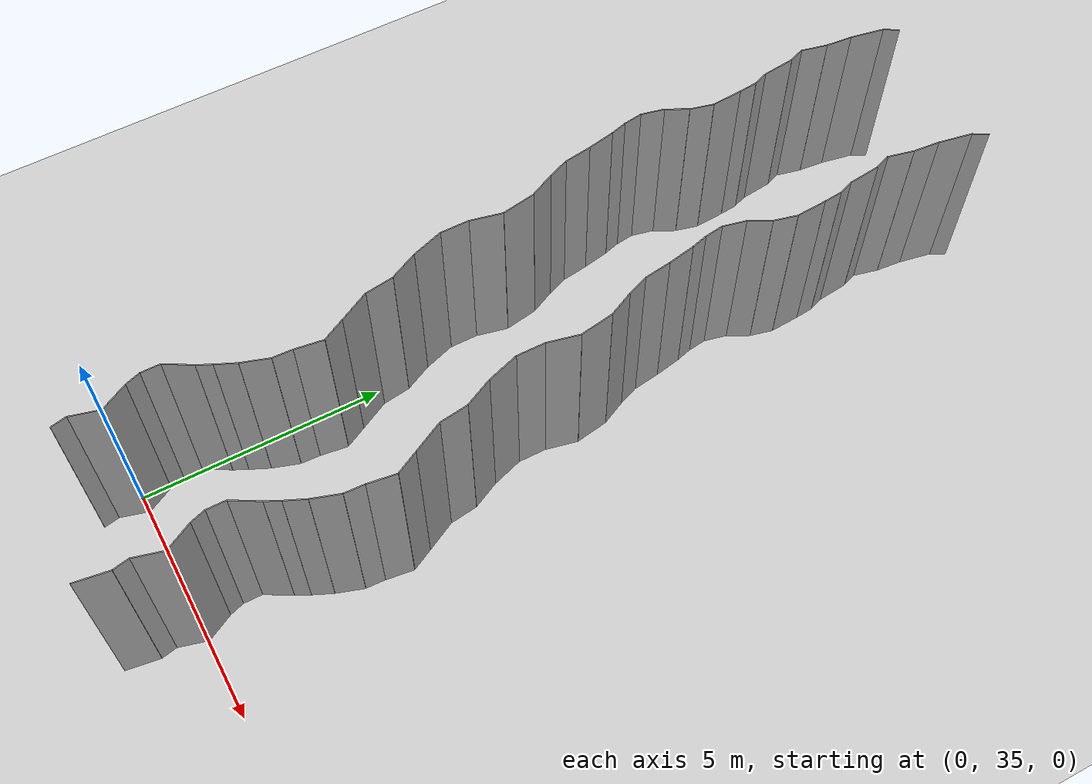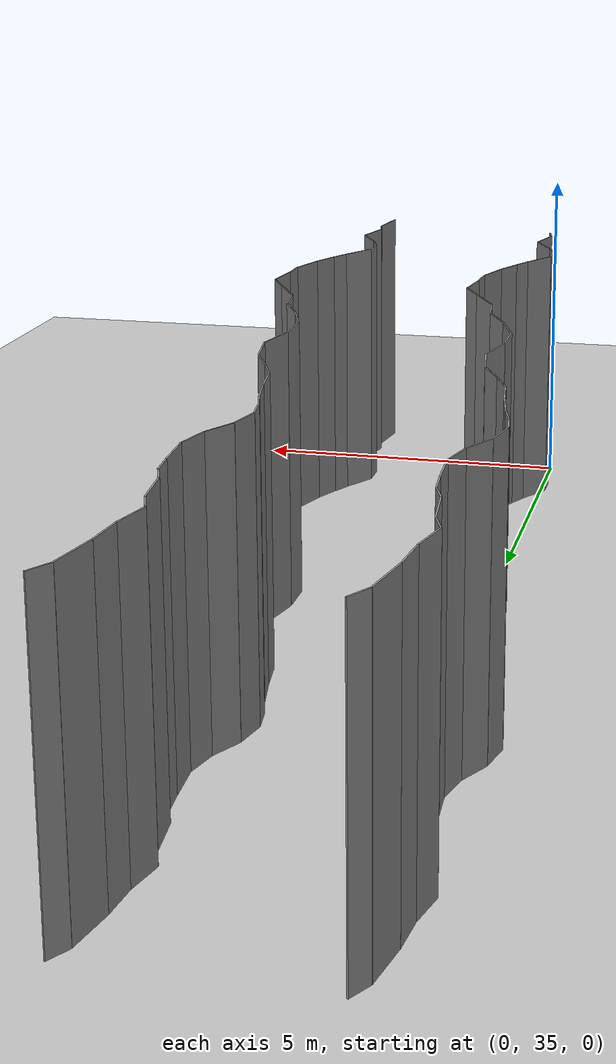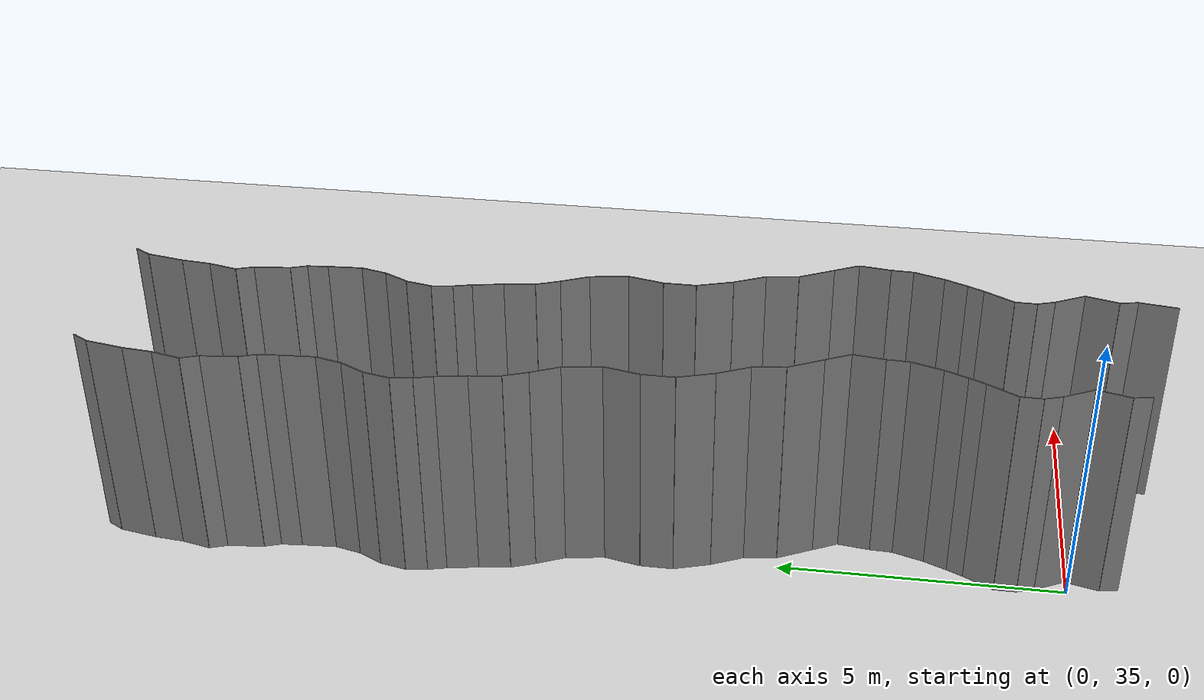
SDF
<sdf version="1.6">
 <world name="default">
  <model name="ground_plane">
   <static>1</static>
   <link name="link">
    <collision name="collision">
     <geometry><plane><normal>0 0 1</normal><size>200 200</size></plane></geometry>
     <surface><friction><ode><mu>100</mu><mu2>50</mu2></ode></friction></surface>
    </collision>
    <visual name="visual">
     <cast_shadows>0</cast_shadows>
     <geometry><plane><normal>0 0 1</normal><size>200 200</size></plane></geometry>
     <material>
      <script><uri>file://media/materials/scripts/gazebo.material</uri><name>Gazebo/Grey</name></script>
     </material>
    </visual>
   </link>
   <pose>0 100 0 0 -0 0</pose>
  </model>
  <model name="wall_149">
   <static>1</static>
   <pose>3.171608143564912 33.77311042109555 2 0 0 -0.14386038586667088</pose>
   <link name="link">
    <collision name="collision"><geometry><box><size>0.02 0.695794862949 4</size></box></geometry></collision>
    <visual name="visual">
     <material>
      <script><name>Gazebo/Grey</name><uri>file://media/materials/scripts/gazebo.material</uri></script>
     </material>
     <geometry><box><size>0.02 0.695794862949 4</size></box></geometry>
    </visual>
   </link>
  </model>
  <model name="wall_150">
   <static>1</static>
   <pose>0.18892350985003298 34.27796828672299 2 0 0 0.20008903438960743</pose>
   <link name="link">
    <collision name="collision"><geometry><box><size>0.02 0.327645368961 4</size></box></geometry></collision>
    <visual name="visual">
     <material>
      <script><name>Gazebo/Grey</name><uri>file://media/materials/scripts/gazebo.material</uri></script>
     </material>
     <geometry><box><size>0.02 0.327645368961 4</size></box></geometry>
    </visual>
   </link>
  </model>
  <model name="wall_151">
   <static>1</static>
   <pose>3.188923509850033 34.27796828672299 2 0 0 0.20008903438960743</pose>
   <link name="link">
    <collision name="collision"><geometry><box><size>0.02 0.327645368961 4</size></box></geometry></collision>
    <visual name="visual">
     <material>
      <script><name>Gazebo/Grey</name><uri>file://media/materials/scripts/gazebo.material</uri></script>
     </material>
     <geometry><box><size>0.02 0.327645368961 4</size></box></geometry>
    </visual>
   </link>
  </model>
  <model name="wall_152">
   <static>1</static>
   <pose>0.23509121913495112 34.73130719748788 2 0 0 -0.2626823083209247</pose>
   <link name="link">
    <collision name="collision"><geometry><box><size>0.02 0.606369682561 4</size></box></geometry></collision>
    <visual name="visual">
     <material>
      <script><name>Gazebo/Grey</name><uri>file://media/materials/scripts/gazebo.material</uri></script>
     </material>
     <geometry><box><size>0.02 0.606369682561 4</size></box></geometry>
    </visual>
   </link>
  </model>
  <model name="wall_153">
   <static>1</static>
   <pose>3.2350912191349512 34.73130719748788 2 0 0 -0.2626823083209247</pose>
   <link name="link">
    <collision name="collision"><geometry><box><size>0.02 0.606369682561 4</size></box></geometry></collision>
    <visual name="visual">
     <material>
      <script><name>Gazebo/Grey</name><uri>file://media/materials/scripts/gazebo.material</uri></script>
     </material>
     <geometry><box><size>0.02 0.606369682561 4</size></box></geometry>
    </visual>
   </link>
  </model>
  <model name="wall_154">
   <static>1</static>
   <pose>0.1718840030193623 35.28975248554513 2 0 0 0.4906899880882893</pose>
   <link name="link">
    <collision name="collision"><geometry><box><size>0.02 0.602399615503 4</size></box></geometry></collision>
    <visual name="visual">
     <material>
      <script><name>Gazebo/Grey</name><uri>file://media/materials/scripts/gazebo.material</uri></script>
     </material>
     <geometry><box><size>0.02 0.602399615503 4</size></box></geometry>
    </visual>
   </link>
  </model>
  <model name="wall_155">
   <static>1</static>
   <pose>3.1718840030193625 35.28975248554513 2 0 0 0.4906899880882893</pose>
   <link name="link">
    <collision name="collision"><geometry><box><size>0.02 0.602399615503 4</size></box></geometry></collision>
    <visual name="visual">
     <material>
      <script><name>Gazebo/Grey</name><uri>file://media/materials/scripts/gazebo.material</uri></script>
     </material>
     <geometry><box><size>0.02 0.602399615503 4</size></box></geometry>
    </visual>
   </link>
  </model>
  <model name="wall_156">
   <static>1</static>
   <pose>-0.020345527843900625 35.70681303335894 2 0 0 0.3207225356970193</pose>
   <link name="link">
    <collision name="collision"><geometry><box><size>0.02 0.319069912063 4</size></box></geometry></collision>
    <visual name="visual">
     <material>
      <script><name>Gazebo/Grey</name><uri>file://media/materials/scripts/gazebo.material</uri></script>
     </material>
     <geometry><box><size>0.02 0.319069912063 4</size></box></geometry>
    </visual>
   </link>
  </model>
  <model name="wall_157">
   <static>1</static>
   <pose>2.9796544721560996 35.70681303335894 2 0 0 0.3207225356970193</pose>
   <link name="link">
    <collision name="collision"><geometry><box><size>0.02 0.319069912063 4</size></box></geometry></collision>
    <visual name="visual">
     <material>
      <script><name>Gazebo/Grey</name><uri>file://media/materials/scripts/gazebo.material</uri></script>
     </material>
     <geometry><box><size>0.02 0.319069912063 4</size></box></geometry>
    </visual>
   </link>
  </model>
  <model name="wall_158">
   <static>1</static>
   <pose>-0.0694467866599844 36.053499369457356 2 0 0 -0.006106383864574724</pose>
   <link name="link">
    <collision name="collision"><geometry><box><size>0.02 0.390580091799 4</size></box></geometry></collision>
    <visual name="visual">
     <material>
      <script><name>Gazebo/Grey</name><uri>file://media/materials/scripts/gazebo.material</uri></script>
     </material>
     <geometry><box><size>0.02 0.390580091799 4</size></box></geometry>
    </visual>
   </link>
  </model>
  <model name="wall_159">
   <static>1</static>
   <pose>2.9305532133400156 36.053499369457356 2 0 0 -0.006106383864574724</pose>
   <link name="link">
    <collision name="collision"><geometry><box><size>0.02 0.390580091799 4</size></box></geometry></collision>
    <visual name="visual">
     <material>
      <script><name>Gazebo/Grey</name><uri>file://media/materials/scripts/gazebo.material</uri></script>
     </material>
     <geometry><box><size>0.02 0.390580091799 4</size></box></geometry>
    </visual>
   </link>
  </model>
  <model name="wall_160">
   <static>1</static>
   <pose>0.08222341834636318 36.51030600289285 2 0 0 -0.5221318421050558</pose>
   <link name="link">
    <collision name="collision"><geometry><box><size>0.02 0.603444668684 4</size></box></geometry></collision>
    <visual name="visual">
     <material>
      <script><name>Gazebo/Grey</name><uri>file://media/materials/scripts/gazebo.material</uri></script>
     </material>
     <geometry><box><size>0.02 0.603444668684 4</size></box></geometry>
    </visual>
   </link>
  </model>
  <model name="wall_161">
   <static>1</static>
   <pose>3.0822234183463633 36.51030600289285 2 0 0 -0.5221318421050558</pose>
   <link name="link">
    <collision name="collision"><geometry><box><size>0.02 0.603444668684 4</size></box></geometry></collision>
    <visual name="visual">
     <material>
      <script><name>Gazebo/Grey</name><uri>file://media/materials/scripts/gazebo.material</uri></script>
     </material>
     <geometry><box><size>0.02 0.603444668684 4</size></box></geometry>
    </visual>
   </link>
  </model>
  <model name="wall_162">
   <static>1</static>
   <pose>0.3028551902676356 36.91294699241623 2 0 0 -0.46134165340490685</pose>
   <link name="link">
    <collision name="collision"><geometry><box><size>0.02 0.315193042424 4</size></box></geometry></collision>
    <visual name="visual">
     <material>
      <script><name>Gazebo/Grey</name><uri>file://media/materials/scripts/gazebo.material</uri></script>
     </material>
     <geometry><box><size>0.02 0.315193042424 4</size></box></geometry>
    </visual>
   </link>
  </model>
  <model name="wall_163">
   <static>1</static>
   <pose>3.3028551902676355 36.91294699241623 2 0 0 -0.46134165340490685</pose>
   <link name="link">
    <collision name="collision"><geometry><box><size>0.02 0.315193042424 4</size></box></geometry></collision>
    <visual name="visual">
     <material>
      <script><name>Gazebo/Grey</name><uri>file://media/materials/scripts/gazebo.material</uri></script>
     </material>
     <geometry><box><size>0.02 0.315193042424 4</size></box></geometry>
    </visual>
   </link>
  </model>
  <model name="wall_164">
   <static>1</static>
   <pose>0.4636855198954317 37.25498901338076 2 0 0 -0.4239365052582931</pose>
   <link name="link">
    <collision name="collision"><geometry><box><size>0.02 0.44086975747 4</size></box></geometry></collision>
    <visual name="visual">
     <material>
      <script><name>Gazebo/Grey</name><uri>file://media/materials/scripts/gazebo.material</uri></script>
     </material>
     <geometry><box><size>0.02 0.44086975747 4</size></box></geometry>
    </visual>
   </link>
  </model>
  <model name="wall_165">
   <static>1</static>
   <pose>3.4636855198954315 37.25498901338076 2 0 0 -0.4239365052582931</pose>
   <link name="link">
    <collision name="collision"><geometry><box><size>0.02 0.44086975747 4</size></box></geometry></collision>
    <visual name="visual">
     <material>
      <script><name>Gazebo/Grey</name><uri>file://media/materials/scripts/gazebo.material</uri></script>
     </material>
     <geometry><box><size>0.02 0.44086975747 4</size></box></geometry>
    </visual>
   </link>
  </model>
  <model name="wall_166">
   <static>1</static>
   <pose>0.6454690939652444 37.73129103879797 2 0 0 -0.31950601574117365</pose>
   <link name="link">
    <collision name="collision"><geometry><box><size>0.02 0.580121055424 4</size></box></geometry></collision>
    <visual name="visual">
     <material>
      <script><name>Gazebo/Grey</name><uri>file://media/materials/scripts/gazebo.material</uri></script>
     </material>
     <geometry><box><size>0.02 0.580121055424 4</size></box></geometry>
    </visual>
   </link>
  </model>
  <model name="wall_167">
   <static>1</static>
   <pose>3.6454690939652443 37.73129103879797 2 0 0 -0.31950601574117365</pose>
   <link name="link">
    <collision name="collision"><geometry><box><size>0.02 0.580121055424 4</size></box></geometry></collision>
    <visual name="visual">
     <material>
      <script><name>Gazebo/Grey</name><uri>file://media/materials/scripts/gazebo.material</uri></script>
     </material>
     <geometry><box><size>0.02 0.580121055424 4</size></box></geometry>
    </visual>
   </link>
  </model>
  <model name="wall_168">
   <static>1</static>
   <pose>0.7454639634578197 38.207496566971045 2 0 0 -0.0442263896261448</pose>
   <link name="link">
    <collision name="collision"><geometry><box><size>0.02 0.402042653715 4</size></box></geometry></collision>
    <visual name="visual">
     <material>
      <script><name>Gazebo/Grey</name><uri>file://media/materials/scripts/gazebo.material</uri></script>
     </material>
     <geometry><box><size>0.02 0.402042653715 4</size></box></geometry>
    </visual>
   </link>
  </model>
  <model name="wall_169">
   <static>1</static>
   <pose>3.7454639634578197 38.207496566971045 2 0 0 -0.0442263896261448</pose>
   <link name="link">
    <collision name="collision"><geometry><box><size>0.02 0.402042653715 4</size></box></geometry></collision>
    <visual name="visual">
     <material>
      <script><name>Gazebo/Grey</name><uri>file://media/materials/scripts/gazebo.material</uri></script>
     </material>
     <geometry><box><size>0.02 0.402042653715 4</size></box></geometry>
    </visual>
   </link>
  </model>
  <model name="wall_170">
   <static>1</static>
   <pose>0.7938664677204483 38.694957160616724 2 0 0 -0.13699420246442098</pose>
   <link name="link">
    <collision name="collision"><geometry><box><size>0.02 0.578693463678 4</size></box></geometry></collision>
    <visual name="visual">
     <material>
      <script><name>Gazebo/Grey</name><uri>file://media/materials/scripts/gazebo.material</uri></script>
     </material>
     <geometry><box><size>0.02 0.578693463678 4</size></box></geometry>
    </visual>
   </link>
  </model>
  <model name="wall_171">
   <static>1</static>
   <pose>3.7938664677204486 38.694957160616724 2 0 0 -0.13699420246442098</pose>
   <link name="link">
    <collision name="collision"><geometry><box><size>0.02 0.578693463678 4</size></box></geometry></collision>
    <visual name="visual">
     <material>
      <script><name>Gazebo/Grey</name><uri>file://media/materials/scripts/gazebo.material</uri></script>
     </material>
     <geometry><box><size>0.02 0.578693463678 4</size></box></geometry>
    </visual>
   </link>
  </model>
  <model name="wall_172">
   <static>1</static>
   <pose>0.719820478359117 39.20081499025873 2 0 0 0.47795789785538756</pose>
   <link name="link">
    <collision name="collision"><geometry><box><size>0.02 0.493778787433 4</size></box></geometry></collision>
    <visual name="visual">
     <material>
      <script><name>Gazebo/Grey</name><uri>file://media/materials/scripts/gazebo.material</uri></script>
     </material>
     <geometry><box><size>0.02 0.493778787433 4</size></box></geometry>
    </visual>
   </link>
  </model>
  <model name="wall_173">
   <static>1</static>
   <pose>3.719820478359117 39.20081499025873 2 0 0 0.47795789785538756</pose>
   <link name="link">
    <collision name="collision"><geometry><box><size>0.02 0.493778787433 4</size></box></geometry></collision>
    <visual name="visual">
     <material>
      <script><name>Gazebo/Grey</name><uri>file://media/materials/scripts/gazebo.material</uri></script>
     </material>
     <geometry><box><size>0.02 0.493778787433 4</size></box></geometry>
    </visual>
   </link>
  </model>
  <model name="wall_174">
   <static>1</static>
   <pose>0.447091212355347 39.724114511665235 2 0 0 0.4822284065819287</pose>
   <link name="link">
    <collision name="collision"><geometry><box><size>0.02 0.686433374847 4</size></box></geometry></collision>
    <visual name="visual">
     <material>
      <script><name>Gazebo/Grey</name><uri>file://media/materials/scripts/gazebo.material</uri></script>
     </material>
     <geometry><box><size>0.02 0.686433374847 4</size></box></geometry>
    </visual>
   </link>
  </model>
  <model name="wall_175">
   <static>1</static>
   <pose>3.447091212355347 39.724114511665235 2 0 0 0.4822284065819287</pose>
   <link name="link">
    <collision name="collision"><geometry><box><size>0.02 0.686433374847 4</size></box></geometry></collision>
    <visual name="visual">
     <material>
      <script><name>Gazebo/Grey</name><uri>file://media/materials/scripts/gazebo.material</uri></script>
     </material>
     <geometry><box><size>0.02 0.686433374847 4</size></box></geometry>
    </visual>
   </link>
  </model>
  <model name="wall_176">
   <static>1</static>
   <pose>0.24852484115976017 40.31852896379773 2 0 0 0.13487386195647824</pose>
   <link name="link">
    <collision name="collision"><geometry><box><size>0.02 0.585995695795 4</size></box></geometry></collision>
    <visual name="visual">
     <material>
      <script><name>Gazebo/Grey</name><uri>file://media/materials/scripts/gazebo.material</uri></script>
     </material>
     <geometry><box><size>0.02 0.585995695795 4</size></box></geometry>
    </visual>
   </link>
  </model>
  <model name="wall_177">
   <static>1</static>
   <pose>3.2485248411597603 40.31852896379773 2 0 0 0.13487386195647824</pose>
   <link name="link">
    <collision name="collision"><geometry><box><size>0.02 0.585995695795 4</size></box></geometry></collision>
    <visual name="visual">
     <material>
      <script><name>Gazebo/Grey</name><uri>file://media/materials/scripts/gazebo.material</uri></script>
     </material>
     <geometry><box><size>0.02 0.585995695795 4</size></box></geometry>
    </visual>
   </link>
  </model>
  <model name="wall_178">
   <static>1</static>
   <pose>0.0734681053731403 40.88732870575399 2 0 0 0.4533309069917222</pose>
   <link name="link">
    <collision name="collision"><geometry><box><size>0.02 0.619499208054 4</size></box></geometry></collision>
    <visual name="visual">
     <material>
      <script><name>Gazebo/Grey</name><uri>file://media/materials/scripts/gazebo.material</uri></script>
     </material>
     <geometry><box><size>0.02 0.619499208054 4</size></box></geometry>
    </visual>
   </link>
  </model>
  <model name="wall_179">
   <static>1</static>
   <pose>3.0734681053731405 40.88732870575399 2 0 0 0.4533309069917222</pose>
   <link name="link">
    <collision name="collision"><geometry><box><size>0.02 0.619499208054 4</size></box></geometry></collision>
    <visual name="visual">
     <material>
      <script><name>Gazebo/Grey</name><uri>file://media/materials/scripts/gazebo.material</uri></script>
     </material>
     <geometry><box><size>0.02 0.619499208054 4</size></box></geometry>
    </visual>
   </link>
  </model>
  <model name="wall_180">
   <static>1</static>
   <pose>-0.1666636296863778 41.48458326951549 2 0 0 0.3166861547985887</pose>
   <link name="link">
    <collision name="collision"><geometry><box><size>0.02 0.670947981651 4</size></box></geometry></collision>
    <visual name="visual">
     <material>
      <script><name>Gazebo/Grey</name><uri>file://media/materials/scripts/gazebo.material</uri></script>
     </material>
     <geometry><box><size>0.02 0.670947981651 4</size></box></geometry>
    </visual>
   </link>
  </model>
  <model name="wall_181">
   <static>1</static>
   <pose>2.833336370313622 41.48458326951549 2 0 0 0.3166861547985887</pose>
   <link name="link">
    <collision name="collision"><geometry><box><size>0.02 0.670947981651 4</size></box></geometry></collision>
    <visual name="visual">
     <material>
      <script><name>Gazebo/Grey</name><uri>file://media/materials/scripts/gazebo.material</uri></script>
     </material>
     <geometry><box><size>0.02 0.670947981651 4</size></box></geometry>
    </visual>
   </link>
  </model>
  <model name="wall_182">
   <static>1</static>
   <pose>-0.2688960229862651 42.095467656909655 2 0 0 -0.007670892727311444</pose>
   <link name="link">
    <collision name="collision"><geometry><box><size>0.02 0.58420246024 4</size></box></geometry></collision>
    <visual name="visual">
     <material>
      <script><name>Gazebo/Grey</name><uri>file://media/materials/scripts/gazebo.material</uri></script>
     </material>
     <geometry><box><size>0.02 0.58420246024 4</size></box></geometry>
    </visual>
   </link>
  </model>
  <model name="wall_183">
   <static>1</static>
   <pose>2.731103977013735 42.095467656909655 2 0 0 -0.007670892727311444</pose>
   <link name="link">
    <collision name="collision"><geometry><box><size>0.02 0.58420246024 4</size></box></geometry></collision>
    <visual name="visual">
     <material>
      <script><name>Gazebo/Grey</name><uri>file://media/materials/scripts/gazebo.material</uri></script>
     </material>
     <geometry><box><size>0.02 0.58420246024 4</size></box></geometry>
    </visual>
   </link>
  </model>
  <model name="wall_184">
   <static>1</static>
   <pose>-0.19300587307110623 42.711466285547026 2 0 0 -0.22357786916965672</pose>
   <link name="link">
    <collision name="collision"><geometry><box><size>0.02 0.664347318885 4</size></box></geometry></collision>
    <visual name="visual">
     <material>
      <script><name>Gazebo/Grey</name><uri>file://media/materials/scripts/gazebo.material</uri></script>
     </material>
     <geometry><box><size>0.02 0.664347318885 4</size></box></geometry>
    </visual>
   </link>
  </model>
  <model name="wall_185">
   <static>1</static>
   <pose>2.8069941269288936 42.711466285547026 2 0 0 -0.22357786916965672</pose>
   <link name="link">
    <collision name="collision"><geometry><box><size>0.02 0.664347318885 4</size></box></geometry></collision>
    <visual name="visual">
     <material>
      <script><name>Gazebo/Grey</name><uri>file://media/materials/scripts/gazebo.material</uri></script>
     </material>
     <geometry><box><size>0.02 0.664347318885 4</size></box></geometry>
    </visual>
   </link>
  </model>
  <model name="wall_186">
   <static>1</static>
   <pose>-0.17528976340571906 43.377540116898686 2 0 0 0.16203455078639029</pose>
   <link name="link">
    <collision name="collision"><geometry><box><size>0.02 0.693418700421 4</size></box></geometry></collision>
    <visual name="visual">
     <material>
      <script><name>Gazebo/Grey</name><uri>file://media/materials/scripts/gazebo.material</uri></script>
     </material>
     <geometry><box><size>0.02 0.693418700421 4</size></box></geometry>
    </visual>
   </link>
  </model>
  <model name="wall_187">
   <static>1</static>
   <pose>2.824710236594281 43.377540116898686 2 0 0 0.16203455078639029</pose>
   <link name="link">
    <collision name="collision"><geometry><box><size>0.02 0.693418700421 4</size></box></geometry></collision>
    <visual name="visual">
     <material>
      <script><name>Gazebo/Grey</name><uri>file://media/materials/scripts/gazebo.material</uri></script>
     </material>
     <geometry><box><size>0.02 0.693418700421 4</size></box></geometry>
    </visual>
   </link>
  </model>
  <model name="wall_188">
   <static>1</static>
   <pose>-0.3475570694441625 43.96585898478169 2 0 0 0.4414981101005611</pose>
   <link name="link">
    <collision name="collision"><geometry><box><size>0.02 0.544514132998 4</size></box></geometry></collision>
    <visual name="visual">
     <material>
      <script><name>Gazebo/Grey</name><uri>file://media/materials/scripts/gazebo.material</uri></script>
     </material>
     <geometry><box><size>0.02 0.544514132998 4</size></box></geometry>
    </visual>
   </link>
  </model>
  <model name="wall_189">
   <static>1</static>
   <pose>2.6524429305558375 43.96585898478169 2 0 0 0.4414981101005611</pose>
   <link name="link">
    <collision name="collision"><geometry><box><size>0.02 0.544514132998 4</size></box></geometry></collision>
    <visual name="visual">
     <material>
      <script><name>Gazebo/Grey</name><uri>file://media/materials/scripts/gazebo.material</uri></script>
     </material>
     <geometry><box><size>0.02 0.544514132998 4</size></box></geometry>
    </visual>
   </link>
  </model>
  <model name="wall_190">
   <static>1</static>
   <pose>-0.5457831659279684 44.420310294203695 2 0 0 0.3745828025813648</pose>
   <link name="link">
    <collision name="collision"><geometry><box><size>0.02 0.44763974455 4</size></box></geometry></collision>
    <visual name="visual">
     <material>
      <script><name>Gazebo/Grey</name><uri>file://media/materials/scripts/gazebo.material</uri></script>
     </material>
     <geometry><box><size>0.02 0.44763974455 4</size></box></geometry>
    </visual>
   </link>
  </model>
  <model name="wall_191">
   <static>1</static>
   <pose>2.4542168340720316 44.420310294203695 2 0 0 0.3745828025813648</pose>
   <link name="link">
    <collision name="collision"><geometry><box><size>0.02 0.44763974455 4</size></box></geometry></collision>
    <visual name="visual">
     <material>
      <script><name>Gazebo/Grey</name><uri>file://media/materials/scripts/gazebo.material</uri></script>
     </material>
     <geometry><box><size>0.02 0.44763974455 4</size></box></geometry>
    </visual>
   </link>
  </model>
  <model name="wall_192">
   <static>1</static>
   <pose>-0.6655032452664298 44.90588727167813 2 0 0 0.135589481040384</pose>
   <link name="link">
    <collision name="collision"><geometry><box><size>0.02 0.559690332387 4</size></box></geometry></collision>
    <visual name="visual">
     <material>
      <script><name>Gazebo/Grey</name><uri>file://media/materials/scripts/gazebo.material</uri></script>
     </material>
     <geometry><box><size>0.02 0.559690332387 4</size></box></geometry>
    </visual>
   </link>
  </model>
  <model name="wall_193">
   <static>1</static>
   <pose>2.3344967547335704 44.90588727167813 2 0 0 0.135589481040384</pose>
   <link name="link">
    <collision name="collision"><geometry><box><size>0.02 0.559690332387 4</size></box></geometry></collision>
    <visual name="visual">
     <material>
      <script><name>Gazebo/Grey</name><uri>file://media/materials/scripts/gazebo.material</uri></script>
     </material>
     <geometry><box><size>0.02 0.559690332387 4</size></box></geometry>
    </visual>
   </link>
  </model>
  <model name="wall_194">
   <static>1</static>
   <pose>-0.753806554074965 45.457831964252115 2 0 0 0.18174103738410033</pose>
   <link name="link">
    <collision name="collision"><geometry><box><size>0.02 0.558534776949 4</size></box></geometry></collision>
    <visual name="visual">
     <material>
      <script><name>Gazebo/Grey</name><uri>file://media/materials/scripts/gazebo.material</uri></script>
     </material>
     <geometry><box><size>0.02 0.558534776949 4</size></box></geometry>
    </visual>
   </link>
  </model>
  <model name="wall_195">
   <static>1</static>
   <pose>2.246193445925035 45.457831964252115 2 0 0 0.18174103738410033</pose>
   <link name="link">
    <collision name="collision"><geometry><box><size>0.02 0.558534776949 4</size></box></geometry></collision>
    <visual name="visual">
     <material>
      <script><name>Gazebo/Grey</name><uri>file://media/materials/scripts/gazebo.material</uri></script>
     </material>
     <geometry><box><size>0.02 0.558534776949 4</size></box></geometry>
    </visual>
   </link>
  </model>
  <model name="wall_196">
   <static>1</static>
   <pose>-0.8485003191332517 45.89567851772654 2 0 0 0.2646263599293831</pose>
   <link name="link">
    <collision name="collision"><geometry><box><size>0.02 0.338127225456 4</size></box></geometry></collision>
    <visual name="visual">
     <material>
      <script><name>Gazebo/Grey</name><uri>file://media/materials/scripts/gazebo.material</uri></script>
     </material>
     <geometry><box><size>0.02 0.338127225456 4</size></box></geometry>
    </visual>
   </link>
  </model>
  <model name="wall_197">
   <static>1</static>
   <pose>2.151499680866748 45.89567851772654 2 0 0 0.2646263599293831</pose>
   <link name="link">
    <collision name="collision"><geometry><box><size>0.02 0.338127225456 4</size></box></geometry></collision>
    <visual name="visual">
     <material>
      <script><name>Gazebo/Grey</name><uri>file://media/materials/scripts/gazebo.material</uri></script>
     </material>
     <geometry><box><size>0.02 0.338127225456 4</size></box></geometry>
    </visual>
   </link>
  </model>
  <model name="wall_198">
   <static>1</static>
   <pose>-0.9182193198925108 46.24978863837233 2 0 0 0.13277331267441156</pose>
   <link name="link">
    <collision name="collision"><geometry><box><size>0.02 0.385253912654 4</size></box></geometry></collision>
    <visual name="visual">
     <material>
      <script><name>Gazebo/Grey</name><uri>file://media/materials/scripts/gazebo.material</uri></script>
     </material>
     <geometry><box><size>0.02 0.385253912654 4</size></box></geometry>
    </visual>
   </link>
  </model>
  <model name="wall_199">
   <static>1</static>
   <pose>2.081780680107489 46.24978863837233 2 0 0 0.13277331267441156</pose>
   <link name="link">
    <collision name="collision"><geometry><box><size>0.02 0.385253912654 4</size></box></geometry></collision>
    <visual name="visual">
     <material>
      <script><name>Gazebo/Grey</name><uri>file://media/materials/scripts/gazebo.material</uri></script>
     </material>
     <geometry><box><size>0.02 0.385253912654 4</size></box></geometry>
    </visual>
   </link>
  </model>
  <model name="wall_200">
   <static>1</static>
   <pose>-0.8909937189864515 46.67592076523846 2 0 0 -0.22052968463397313</pose>
   <link name="link">
    <collision name="collision"><geometry><box><size>0.02 0.482076184588 4</size></box></geometry></collision>
    <visual name="visual">
     <material>
      <script><name>Gazebo/Grey</name><uri>file://media/materials/scripts/gazebo.material</uri></script>
     </material>
     <geometry><box><size>0.02 0.482076184588 4</size></box></geometry>
    </visual>
   </link>
  </model>
  <model name="wall_201">
   <static>1</static>
   <pose>2.1090062810135484 46.67592076523846 2 0 0 -0.22052968463397313</pose>
   <link name="link">
    <collision name="collision"><geometry><box><size>0.02 0.482076184588 4</size></box></geometry></collision>
    <visual name="visual">
     <material>
      <script><name>Gazebo/Grey</name><uri>file://media/materials/scripts/gazebo.material</uri></script>
     </material>
     <geometry><box><size>0.02 0.482076184588 4</size></box></geometry>
    </visual>
   </link>
  </model>
  <model name="wall_202">
   <static>1</static>
   <pose>-0.7241683128051178 47.12721906623517 2 0 0 -0.4857942917477624</pose>
   <link name="link">
    <collision name="collision"><geometry><box><size>0.02 0.488740631539 4</size></box></geometry></collision>
    <visual name="visual">
     <material>
      <script><name>Gazebo/Grey</name><uri>file://media/materials/scripts/gazebo.material</uri></script>
     </material>
     <geometry><box><size>0.02 0.488740631539 4</size></box></geometry>
    </visual>
   </link>
  </model>
  <model name="wall_203">
   <static>1</static>
   <pose>2.275831687194882 47.12721906623517 2 0 0 -0.4857942917477624</pose>
   <link name="link">
    <collision name="collision"><geometry><box><size>0.02 0.488740631539 4</size></box></geometry></collision>
    <visual name="visual">
     <material>
      <script><name>Gazebo/Grey</name><uri>file://media/materials/scripts/gazebo.material</uri></script>
     </material>
     <geometry><box><size>0.02 0.488740631539 4</size></box></geometry>
    </visual>
   </link>
  </model>
  <model name="wall_204">
   <static>1</static>
   <pose>-0.5512655229935823 47.57776558895613 2 0 0 -0.24574699103626166</pose>
   <link name="link">
    <collision name="collision"><geometry><box><size>0.02 0.483421553282 4</size></box></geometry></collision>
    <visual name="visual">
     <material>
      <script><name>Gazebo/Grey</name><uri>file://media/materials/scripts/gazebo.material</uri></script>
     </material>
     <geometry><box><size>0.02 0.483421553282 4</size></box></geometry>
    </visual>
   </link>
  </model>
  <model name="wall_205">
   <static>1</static>
   <pose>2.4487344770064174 47.57776558895613 2 0 0 -0.24574699103626166</pose>
   <link name="link">
    <collision name="collision"><geometry><box><size>0.02 0.483421553282 4</size></box></geometry></collision>
    <visual name="visual">
     <material>
      <script><name>Gazebo/Grey</name><uri>file://media/materials/scripts/gazebo.material</uri></script>
     </material>
     <geometry><box><size>0.02 0.483421553282 4</size></box></geometry>
    </visual>
   </link>
  </model>
  <model name="wall_206">
   <static>1</static>
   <pose>-0.5093919962567317 48.120459303953716 2 0 0 0.05486904550284405</pose>
   <link name="link">
    <collision name="collision"><geometry><box><size>0.02 0.61741902966 4</size></box></geometry></collision>
    <visual name="visual">
     <material>
      <script><name>Gazebo/Grey</name><uri>file://media/materials/scripts/gazebo.material</uri></script>
     </material>
     <geometry><box><size>0.02 0.61741902966 4</size></box></geometry>
    </visual>
   </link>
  </model>
  <model name="wall_207">
   <static>1</static>
   <pose>2.4906080037432683 48.120459303953716 2 0 0 0.05486904550284405</pose>
   <link name="link">
    <collision name="collision"><geometry><box><size>0.02 0.61741902966 4</size></box></geometry></collision>
    <visual name="visual">
     <material>
      <script><name>Gazebo/Grey</name><uri>file://media/materials/scripts/gazebo.material</uri></script>
     </material>
     <geometry><box><size>0.02 0.61741902966 4</size></box></geometry>
    </visual>
   </link>
  </model>
  <model name="wall_208">
   <static>1</static>
   <pose>-0.542642706689757 48.61562780124071 2 0 0 0.08709082726595464</pose>
   <link name="link">
    <collision name="collision"><geometry><box><size>0.02 0.375269411069 4</size></box></geometry></collision>
    <visual name="visual">
     <material>
      <script><name>Gazebo/Grey</name><uri>file://media/materials/scripts/gazebo.material</uri></script>
     </material>
     <geometry><box><size>0.02 0.375269411069 4</size></box></geometry>
    </visual>
   </link>
  </model>
  <model name="wall_209">
   <static>1</static>
   <pose>2.4573572933102428 48.61562780124071 2 0 0 0.08709082726595464</pose>
   <link name="link">
    <collision name="collision"><geometry><box><size>0.02 0.375269411069 4</size></box></geometry></collision>
    <visual name="visual">
     <material>
      <script><name>Gazebo/Grey</name><uri>file://media/materials/scripts/gazebo.material</uri></script>
     </material>
     <geometry><box><size>0.02 0.375269411069 4</size></box></geometry>
    </visual>
   </link>
  </model>
  <model name="wall_210">
   <static>1</static>
   <pose>-0.6111811980202756 48.94592895711615 2 0 0 0.349267257495049</pose>
   <link name="link">
    <collision name="collision"><geometry><box><size>0.02 0.305180861606 4</size></box></geometry></collision>
    <visual name="visual">
     <material>
      <script><name>Gazebo/Grey</name><uri>file://media/materials/scripts/gazebo.material</uri></script>
     </material>
     <geometry><box><size>0.02 0.305180861606 4</size></box></geometry>
    </visual>
   </link>
  </model>
  <model name="wall_211">
   <static>1</static>
   <pose>2.3888188019797245 48.94592895711615 2 0 0 0.349267257495049</pose>
   <link name="link">
    <collision name="collision"><geometry><box><size>0.02 0.305180861606 4</size></box></geometry></collision>
    <visual name="visual">
     <material>
      <script><name>Gazebo/Grey</name><uri>file://media/materials/scripts/gazebo.material</uri></script>
     </material>
     <geometry><box><size>0.02 0.305180861606 4</size></box></geometry>
    </visual>
   </link>
  </model>
  <model name="wall_212">
   <static>1</static>
   <pose>-0.6971369358791548 49.41481609991698 2 0 0 0.10327752442500276</pose>
   <link name="link">
    <collision name="collision"><geometry><box><size>0.02 0.654506573136 4</size></box></geometry></collision>
    <visual name="visual">
     <material>
      <script><name>Gazebo/Grey</name><uri>file://media/materials/scripts/gazebo.material</uri></script>
     </material>
     <geometry><box><size>0.02 0.654506573136 4</size></box></geometry>
    </visual>
   </link>
  </model>
  <model name="wall_213">
   <static>1</static>
   <pose>2.302863064120845 49.41481609991698 2 0 0 0.10327752442500276</pose>
   <link name="link">
    <collision name="collision"><geometry><box><size>0.02 0.654506573136 4</size></box></geometry></collision>
    <visual name="visual">
     <material>
      <script><name>Gazebo/Grey</name><uri>file://media/materials/scripts/gazebo.material</uri></script>
     </material>
     <geometry><box><size>0.02 0.654506573136 4</size></box></geometry>
    </visual>
   </link>
  </model>
  <model name="wall_214">
   <static>1</static>
   <pose>-0.7870007752579878 49.89337537370169 2 0 0 0.35148943324222653</pose>
   <link name="link">
    <collision name="collision"><geometry><box><size>0.02 0.326032772043 4</size></box></geometry></collision>
    <visual name="visual">
     <material>
      <script><name>Gazebo/Grey</name><uri>file://media/materials/scripts/gazebo.material</uri></script>
     </material>
     <geometry><box><size>0.02 0.326032772043 4</size></box></geometry>
    </visual>
   </link>
  </model>
  <model name="wall_215">
   <static>1</static>
   <pose>2.212999224742012 49.89337537370169 2 0 0 0.35148943324222653</pose>
   <link name="link">
    <collision name="collision"><geometry><box><size>0.02 0.326032772043 4</size></box></geometry></collision>
    <visual name="visual">
     <material>
      <script><name>Gazebo/Grey</name><uri>file://media/materials/scripts/gazebo.material</uri></script>
     </material>
     <geometry><box><size>0.02 0.326032772043 4</size></box></geometry>
    </visual>
   </link>
  </model>
  <model name="wall_216">
   <static>1</static>
   <pose>-0.7818264745779623 50.30696736362758 2 0 0 -0.23107691170857006</pose>
   <link name="link">
    <collision name="collision"><geometry><box><size>0.02 0.535312991168 4</size></box></geometry></collision>
    <visual name="visual">
     <material>
      <script><name>Gazebo/Grey</name><uri>file://media/materials/scripts/gazebo.material</uri></script>
     </material>
     <geometry><box><size>0.02 0.535312991168 4</size></box></geometry>
    </visual>
   </link>
  </model>
  <model name="wall_217">
   <static>1</static>
   <pose>2.2181735254220376 50.30696736362758 2 0 0 -0.23107691170857006</pose>
   <link name="link">
    <collision name="collision"><geometry><box><size>0.02 0.535312991168 4</size></box></geometry></collision>
    <visual name="visual">
     <material>
      <script><name>Gazebo/Grey</name><uri>file://media/materials/scripts/gazebo.material</uri></script>
     </material>
     <geometry><box><size>0.02 0.535312991168 4</size></box></geometry>
    </visual>
   </link>
  </model>
  <model name="wall_218">
   <static>1</static>
   <pose>-0.6951224175007553 50.832275920614826 2 0 0 -0.09565510768211143</pose>
   <link name="link">
    <collision name="collision"><geometry><box><size>0.02 0.531964426897 4</size></box></geometry></collision>
    <visual name="visual">
     <material>
      <script><name>Gazebo/Grey</name><uri>file://media/materials/scripts/gazebo.material</uri></script>
     </material>
     <geometry><box><size>0.02 0.531964426897 4</size></box></geometry>
    </visual>
   </link>
  </model>
  <model name="wall_219">
   <static>1</static>
   <pose>2.3048775824992447 50.832275920614826 2 0 0 -0.09565510768211143</pose>
   <link name="link">
    <collision name="collision"><geometry><box><size>0.02 0.531964426897 4</size></box></geometry></collision>
    <visual name="visual">
     <material>
      <script><name>Gazebo/Grey</name><uri>file://media/materials/scripts/gazebo.material</uri></script>
     </material>
     <geometry><box><size>0.02 0.531964426897 4</size></box></geometry>
    </visual>
   </link>
  </model>
  <model name="wall_220">
   <static>1</static>
   <pose>-0.6048340252030051 51.437836530671895 2 0 0 -0.18814055497112964</pose>
   <link name="link">
    <collision name="collision"><geometry><box><size>0.02 0.693832213104 4</size></box></geometry></collision>
    <visual name="visual">
     <material>
      <script><name>Gazebo/Grey</name><uri>file://media/materials/scripts/gazebo.material</uri></script>
     </material>
     <geometry><box><size>0.02 0.693832213104 4</size></box></geometry>
    </visual>
   </link>
  </model>
  <model name="wall_221">
   <static>1</static>
   <pose>2.3951659747969947 51.437836530671895 2 0 0 -0.18814055497112964</pose>
   <link name="link">
    <collision name="collision"><geometry><box><size>0.02 0.693832213104 4</size></box></geometry></collision>
    <visual name="visual">
     <material>
      <script><name>Gazebo/Grey</name><uri>file://media/materials/scripts/gazebo.material</uri></script>
     </material>
     <geometry><box><size>0.02 0.693832213104 4</size></box></geometry>
    </visual>
   </link>
  </model>
  <model name="wall_222">
   <static>1</static>
   <pose>-0.45705452379495065 51.92088330073639 2 0 0 -0.5276247884889191</pose>
   <link name="link">
    <collision name="collision"><geometry><box><size>0.02 0.329286016828 4</size></box></geometry></collision>
    <visual name="visual">
     <material>
      <script><name>Gazebo/Grey</name><uri>file://media/materials/scripts/gazebo.material</uri></script>
     </material>
     <geometry><box><size>0.02 0.329286016828 4</size></box></geometry>
    </visual>
   </link>
  </model>
  <model name="wall_223">
   <static>1</static>
   <pose>2.542945476205049 51.92088330073639 2 0 0 -0.5276247884889191</pose>
   <link name="link">
    <collision name="collision"><geometry><box><size>0.02 0.329286016828 4</size></box></geometry></collision>
    <visual name="visual">
     <material>
      <script><name>Gazebo/Grey</name><uri>file://media/materials/scripts/gazebo.material</uri></script>
     </material>
     <geometry><box><size>0.02 0.329286016828 4</size></box></geometry>
    </visual>
   </link>
  </model>
 </world>
</sdf>
